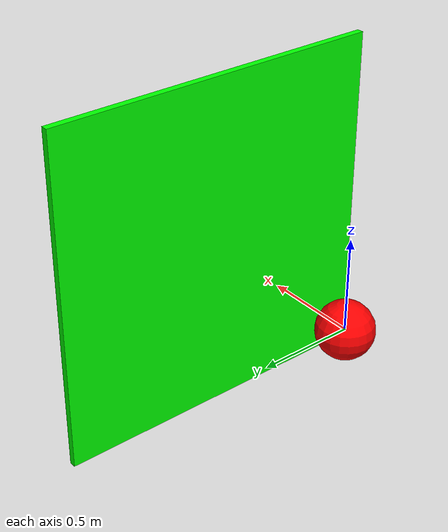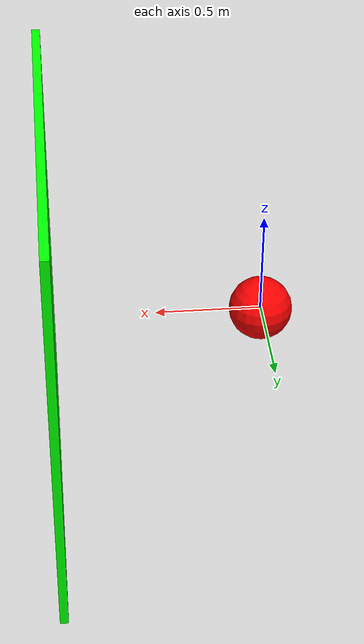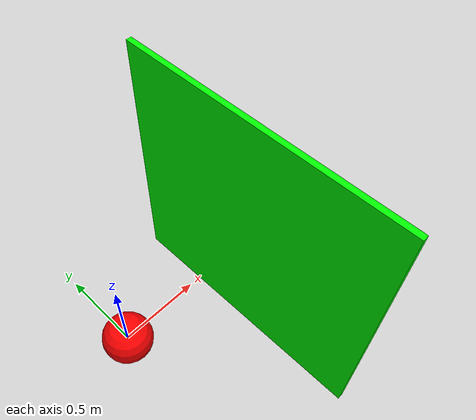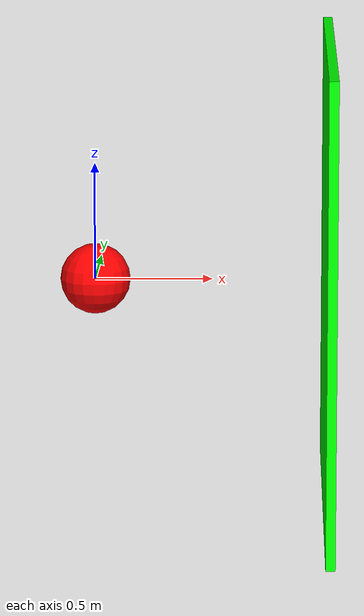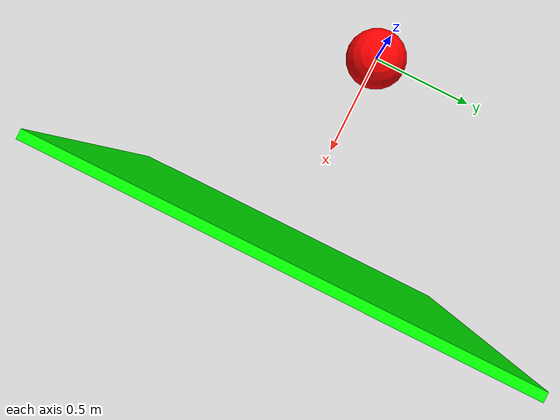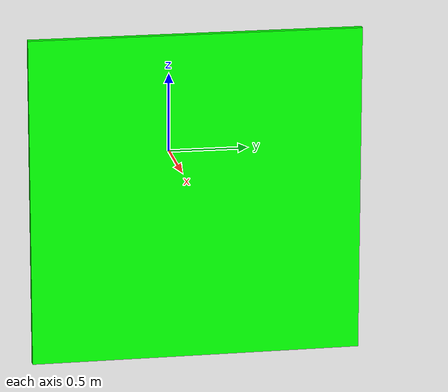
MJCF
<mujoco>
<option gravity="0 0 -9.81" timestep="0.005"/>
   <worldbody>
      <light diffuse=".5 .5 .5" pos="0 0 10" dir="0 0 -1"/>
        <body name="floor" pos="1 0 0">
            <geom condim="3" size="0.02 1 1" rgba="0 1 0 1" type="box"/>
        </body>
        <body name="ball" pos="0 0 0">
            <joint axis="1 0 0" damping="0.1" name="slide0" pos="0 0 0" type="slide"/>
            <joint axis="0 1 0" damping="0.1" name="slide1" pos="0 0 0" type="slide"/>
            <joint axis="0 0 1" damping="1" name="slide2" pos="0 0 0" type="slide"/>
            <geom mass="01" pos="0 0 0" rgba="1 0 0 1" size="0.15" type="sphere"/>
			<camera euler="0 0 0" fovy="40" name="rgb" pos="0 0 2.5"></camera>
        </body>
   </worldbody>
    <actuator>
        <motor gear="2000.0" joint="slide0"/>
        <motor gear="2000.0" joint="slide1"/>
    </actuator>
</mujoco>
